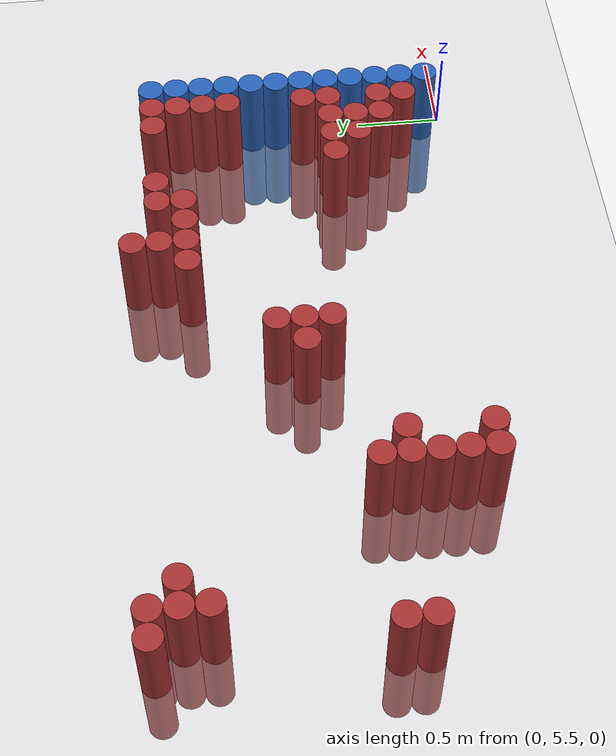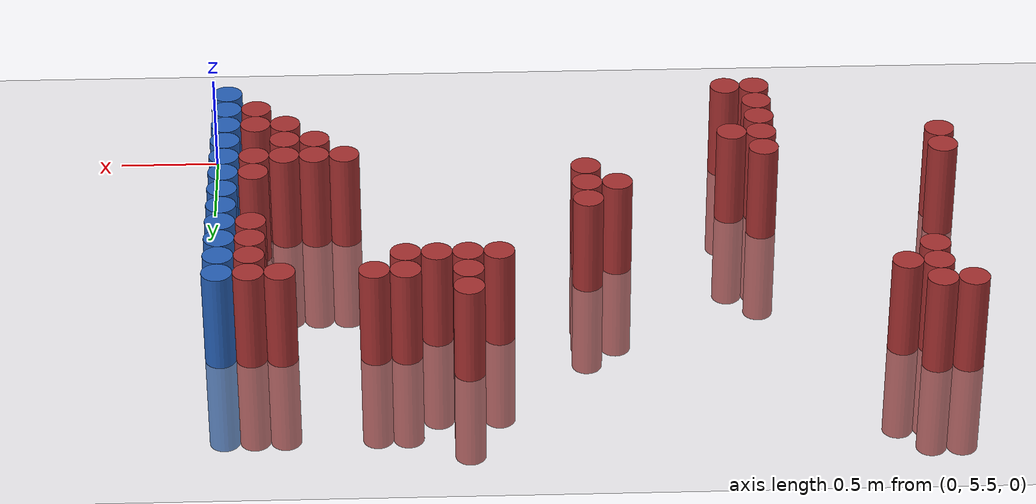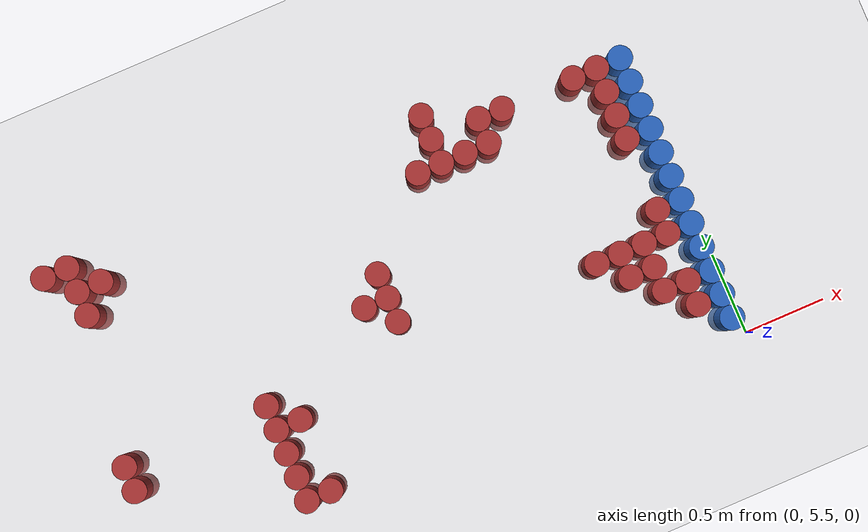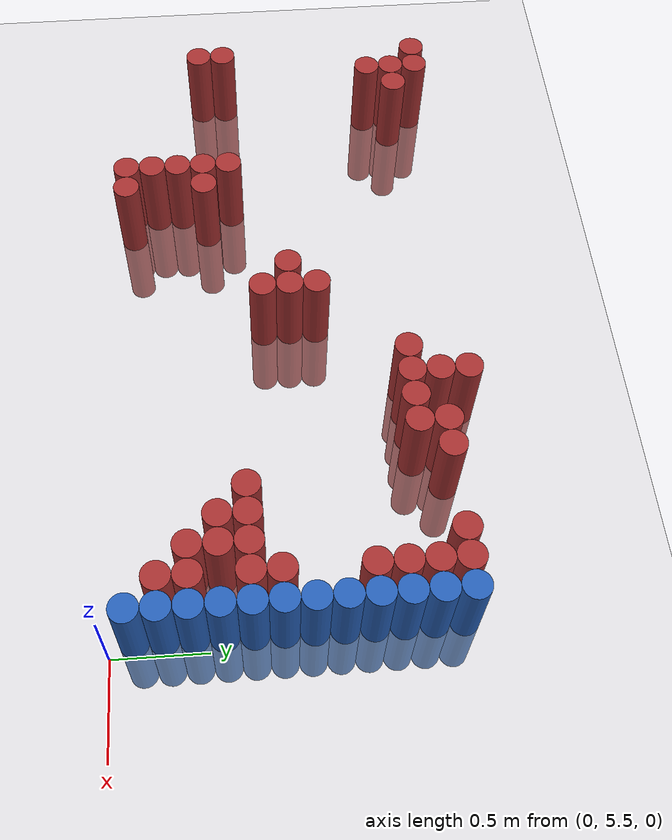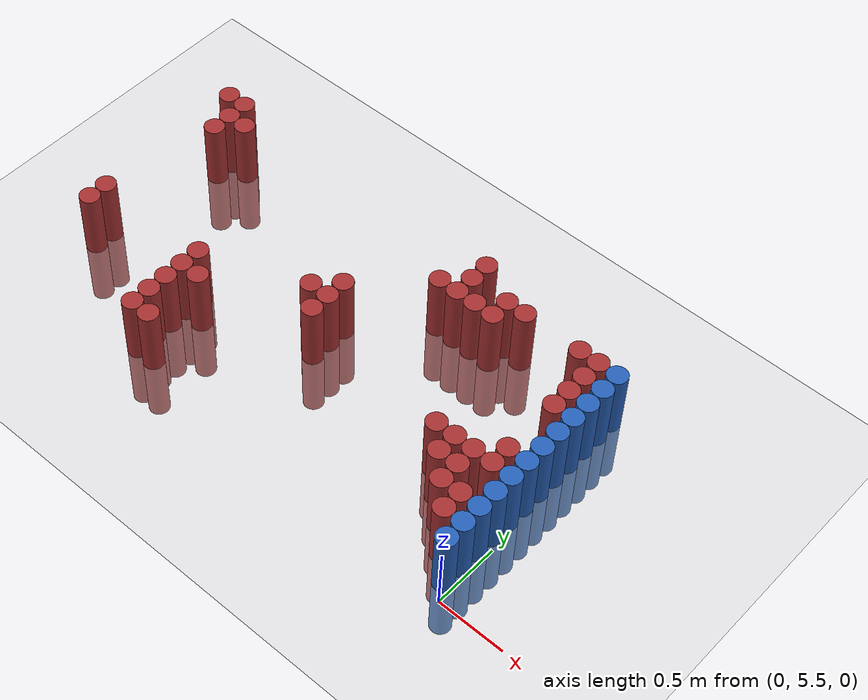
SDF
<sdf version="1.6">
 <world name="default">
  <model name="ground_plane">
   <static>1</static>
   <link name="link">
    <collision name="collision">
     <geometry><plane><normal>0 0 1</normal><size>100 100</size></plane></geometry>
     <surface><friction><ode><mu>100</mu><mu2>50</mu2></ode></friction></surface>
    </collision>
    <visual name="visual">
     <cast_shadows>0</cast_shadows>
     <geometry><plane><normal>0 0 1</normal><size>100 100</size></plane></geometry>
     <material>
      <script><uri>file://media/materials/scripts/gazebo.material</uri><name>Gazebo/Grey</name></script>
     </material>
    </visual>
   </link>
  </model>
  <model name="unit_cylinder_162">
   <static>1</static>
   <pose>-3.675000 6.075000 0.000000 0.000000 0.000000 0.000000</pose>
   <link name="link">
    <inertial>
     <mass>1</mass>
     <inertia><ixx>0.145833</ixx><ixy>0</ixy><ixz>0</ixz><iyy>0.145833</iyy><iyz>0</iyz><izz>0.125</izz></inertia>
    </inertial>
    <collision name="collision">
     <geometry><cylinder><radius>0.075000</radius><length>1</length></cylinder></geometry>
    </collision>
    <visual name="visual">
     <geometry><cylinder><radius>0.075000</radius><length>1</length></cylinder></geometry>
     <material>
      <ambient>0.648000 0.192000 0.192000 1</ambient>
      <diffuse>0.648000 0.192000 0.192000 1</diffuse>
     </material>
     <material>
      <script><name>Gazebo/Grey</name><uri>file://media/materials/scripts/gazebo.material</uri></script>
     </material>
    </visual>
   </link>
  </model>
  <model name="unit_cylinder_163">
   <static>1</static>
   <pose>-3.675000 6.225000 0.000000 0.000000 0.000000 0.000000</pose>
   <link name="link">
    <inertial>
     <mass>1</mass>
     <inertia><ixx>0.145833</ixx><ixy>0</ixy><ixz>0</ixz><iyy>0.145833</iyy><iyz>0</iyz><izz>0.125</izz></inertia>
    </inertial>
    <collision name="collision">
     <geometry><cylinder><radius>0.075000</radius><length>1</length></cylinder></geometry>
    </collision>
    <visual name="visual">
     <geometry><cylinder><radius>0.075000</radius><length>1</length></cylinder></geometry>
     <material>
      <ambient>0.648000 0.192000 0.192000 1</ambient>
      <diffuse>0.648000 0.192000 0.192000 1</diffuse>
     </material>
     <material>
      <script><name>Gazebo/Grey</name><uri>file://media/materials/scripts/gazebo.material</uri></script>
     </material>
    </visual>
   </link>
  </model>
  <model name="unit_cylinder_164">
   <static>1</static>
   <pose>-3.675000 7.425000 0.000000 0.000000 0.000000 0.000000</pose>
   <link name="link">
    <inertial>
     <mass>1</mass>
     <inertia><ixx>0.145833</ixx><ixy>0</ixy><ixz>0</ixz><iyy>0.145833</iyy><iyz>0</iyz><izz>0.125</izz></inertia>
    </inertial>
    <collision name="collision">
     <geometry><cylinder><radius>0.075000</radius><length>1</length></cylinder></geometry>
    </collision>
    <visual name="visual">
     <geometry><cylinder><radius>0.075000</radius><length>1</length></cylinder></geometry>
     <material>
      <ambient>0.648000 0.192000 0.192000 1</ambient>
      <diffuse>0.648000 0.192000 0.192000 1</diffuse>
     </material>
     <material>
      <script><name>Gazebo/Grey</name><uri>file://media/materials/scripts/gazebo.material</uri></script>
     </material>
    </visual>
   </link>
  </model>
  <model name="unit_cylinder_169">
   <static>1</static>
   <pose>-3.525000 7.125000 0.000000 0.000000 0.000000 0.000000</pose>
   <link name="link">
    <inertial>
     <mass>1</mass>
     <inertia><ixx>0.145833</ixx><ixy>0</ixy><ixz>0</ixz><iyy>0.145833</iyy><iyz>0</iyz><izz>0.125</izz></inertia>
    </inertial>
    <collision name="collision">
     <geometry><cylinder><radius>0.075000</radius><length>1</length></cylinder></geometry>
    </collision>
    <visual name="visual">
     <geometry><cylinder><radius>0.075000</radius><length>1</length></cylinder></geometry>
     <material>
      <ambient>0.648000 0.192000 0.192000 1</ambient>
      <diffuse>0.648000 0.192000 0.192000 1</diffuse>
     </material>
     <material>
      <script><name>Gazebo/Grey</name><uri>file://media/materials/scripts/gazebo.material</uri></script>
     </material>
    </visual>
   </link>
  </model>
  <model name="unit_cylinder_170">
   <static>1</static>
   <pose>-3.525000 7.275000 0.000000 0.000000 0.000000 0.000000</pose>
   <link name="link">
    <inertial>
     <mass>1</mass>
     <inertia><ixx>0.145833</ixx><ixy>0</ixy><ixz>0</ixz><iyy>0.145833</iyy><iyz>0</iyz><izz>0.125</izz></inertia>
    </inertial>
    <collision name="collision">
     <geometry><cylinder><radius>0.075000</radius><length>1</length></cylinder></geometry>
    </collision>
    <visual name="visual">
     <geometry><cylinder><radius>0.075000</radius><length>1</length></cylinder></geometry>
     <material>
      <ambient>0.648000 0.192000 0.192000 1</ambient>
      <diffuse>0.648000 0.192000 0.192000 1</diffuse>
     </material>
     <material>
      <script><name>Gazebo/Grey</name><uri>file://media/materials/scripts/gazebo.material</uri></script>
     </material>
    </visual>
   </link>
  </model>
  <model name="unit_cylinder_171">
   <static>1</static>
   <pose>-3.525000 7.425000 0.000000 0.000000 0.000000 0.000000</pose>
   <link name="link">
    <inertial>
     <mass>1</mass>
     <inertia><ixx>0.145833</ixx><ixy>0</ixy><ixz>0</ixz><iyy>0.145833</iyy><iyz>0</iyz><izz>0.125</izz></inertia>
    </inertial>
    <collision name="collision">
     <geometry><cylinder><radius>0.075000</radius><length>1</length></cylinder></geometry>
    </collision>
    <visual name="visual">
     <geometry><cylinder><radius>0.075000</radius><length>1</length></cylinder></geometry>
     <material>
      <ambient>0.648000 0.192000 0.192000 1</ambient>
      <diffuse>0.648000 0.192000 0.192000 1</diffuse>
     </material>
     <material>
      <script><name>Gazebo/Grey</name><uri>file://media/materials/scripts/gazebo.material</uri></script>
     </material>
    </visual>
   </link>
  </model>
  <model name="unit_cylinder_176">
   <static>1</static>
   <pose>-3.375000 7.275000 0.000000 0.000000 0.000000 0.000000</pose>
   <link name="link">
    <inertial>
     <mass>1</mass>
     <inertia><ixx>0.145833</ixx><ixy>0</ixy><ixz>0</ixz><iyy>0.145833</iyy><iyz>0</iyz><izz>0.125</izz></inertia>
    </inertial>
    <collision name="collision">
     <geometry><cylinder><radius>0.075000</radius><length>1</length></cylinder></geometry>
    </collision>
    <visual name="visual">
     <geometry><cylinder><radius>0.075000</radius><length>1</length></cylinder></geometry>
     <material>
      <ambient>0.648000 0.192000 0.192000 1</ambient>
      <diffuse>0.648000 0.192000 0.192000 1</diffuse>
     </material>
     <material>
      <script><name>Gazebo/Grey</name><uri>file://media/materials/scripts/gazebo.material</uri></script>
     </material>
    </visual>
   </link>
  </model>
  <model name="unit_cylinder_177">
   <static>1</static>
   <pose>-2.775000 5.625000 0.000000 0.000000 0.000000 0.000000</pose>
   <link name="link">
    <inertial>
     <mass>1</mass>
     <inertia><ixx>0.145833</ixx><ixy>0</ixy><ixz>0</ixz><iyy>0.145833</iyy><iyz>0</iyz><izz>0.125</izz></inertia>
    </inertial>
    <collision name="collision">
     <geometry><cylinder><radius>0.075000</radius><length>1</length></cylinder></geometry>
    </collision>
    <visual name="visual">
     <geometry><cylinder><radius>0.075000</radius><length>1</length></cylinder></geometry>
     <material>
      <ambient>0.648000 0.192000 0.192000 1</ambient>
      <diffuse>0.648000 0.192000 0.192000 1</diffuse>
     </material>
     <material>
      <script><name>Gazebo/Grey</name><uri>file://media/materials/scripts/gazebo.material</uri></script>
     </material>
    </visual>
   </link>
  </model>
  <model name="unit_cylinder_178">
   <static>1</static>
   <pose>-2.775000 5.775000 0.000000 0.000000 0.000000 0.000000</pose>
   <link name="link">
    <inertial>
     <mass>1</mass>
     <inertia><ixx>0.145833</ixx><ixy>0</ixy><ixz>0</ixz><iyy>0.145833</iyy><iyz>0</iyz><izz>0.125</izz></inertia>
    </inertial>
    <collision name="collision">
     <geometry><cylinder><radius>0.075000</radius><length>1</length></cylinder></geometry>
    </collision>
    <visual name="visual">
     <geometry><cylinder><radius>0.075000</radius><length>1</length></cylinder></geometry>
     <material>
      <ambient>0.648000 0.192000 0.192000 1</ambient>
      <diffuse>0.648000 0.192000 0.192000 1</diffuse>
     </material>
     <material>
      <script><name>Gazebo/Grey</name><uri>file://media/materials/scripts/gazebo.material</uri></script>
     </material>
    </visual>
   </link>
  </model>
  <model name="unit_cylinder_179">
   <static>1</static>
   <pose>-2.775000 5.925000 0.000000 0.000000 0.000000 0.000000</pose>
   <link name="link">
    <inertial>
     <mass>1</mass>
     <inertia><ixx>0.145833</ixx><ixy>0</ixy><ixz>0</ixz><iyy>0.145833</iyy><iyz>0</iyz><izz>0.125</izz></inertia>
    </inertial>
    <collision name="collision">
     <geometry><cylinder><radius>0.075000</radius><length>1</length></cylinder></geometry>
    </collision>
    <visual name="visual">
     <geometry><cylinder><radius>0.075000</radius><length>1</length></cylinder></geometry>
     <material>
      <ambient>0.648000 0.192000 0.192000 1</ambient>
      <diffuse>0.648000 0.192000 0.192000 1</diffuse>
     </material>
     <material>
      <script><name>Gazebo/Grey</name><uri>file://media/materials/scripts/gazebo.material</uri></script>
     </material>
    </visual>
   </link>
  </model>
  <model name="unit_cylinder_180">
   <static>1</static>
   <pose>-2.775000 6.075000 0.000000 0.000000 0.000000 0.000000</pose>
   <link name="link">
    <inertial>
     <mass>1</mass>
     <inertia><ixx>0.145833</ixx><ixy>0</ixy><ixz>0</ixz><iyy>0.145833</iyy><iyz>0</iyz><izz>0.125</izz></inertia>
    </inertial>
    <collision name="collision">
     <geometry><cylinder><radius>0.075000</radius><length>1</length></cylinder></geometry>
    </collision>
    <visual name="visual">
     <geometry><cylinder><radius>0.075000</radius><length>1</length></cylinder></geometry>
     <material>
      <ambient>0.648000 0.192000 0.192000 1</ambient>
      <diffuse>0.648000 0.192000 0.192000 1</diffuse>
     </material>
     <material>
      <script><name>Gazebo/Grey</name><uri>file://media/materials/scripts/gazebo.material</uri></script>
     </material>
    </visual>
   </link>
  </model>
  <model name="unit_cylinder_181">
   <static>1</static>
   <pose>-2.775000 6.225000 0.000000 0.000000 0.000000 0.000000</pose>
   <link name="link">
    <inertial>
     <mass>1</mass>
     <inertia><ixx>0.145833</ixx><ixy>0</ixy><ixz>0</ixz><iyy>0.145833</iyy><iyz>0</iyz><izz>0.125</izz></inertia>
    </inertial>
    <collision name="collision">
     <geometry><cylinder><radius>0.075000</radius><length>1</length></cylinder></geometry>
    </collision>
    <visual name="visual">
     <geometry><cylinder><radius>0.075000</radius><length>1</length></cylinder></geometry>
     <material>
      <ambient>0.648000 0.192000 0.192000 1</ambient>
      <diffuse>0.648000 0.192000 0.192000 1</diffuse>
     </material>
     <material>
      <script><name>Gazebo/Grey</name><uri>file://media/materials/scripts/gazebo.material</uri></script>
     </material>
    </visual>
   </link>
  </model>
  <model name="unit_cylinder_183">
   <static>1</static>
   <pose>-2.625000 5.625000 0.000000 0.000000 0.000000 0.000000</pose>
   <link name="link">
    <inertial>
     <mass>1</mass>
     <inertia><ixx>0.145833</ixx><ixy>0</ixy><ixz>0</ixz><iyy>0.145833</iyy><iyz>0</iyz><izz>0.125</izz></inertia>
    </inertial>
    <collision name="collision">
     <geometry><cylinder><radius>0.075000</radius><length>1</length></cylinder></geometry>
    </collision>
    <visual name="visual">
     <geometry><cylinder><radius>0.075000</radius><length>1</length></cylinder></geometry>
     <material>
      <ambient>0.648000 0.192000 0.192000 1</ambient>
      <diffuse>0.648000 0.192000 0.192000 1</diffuse>
     </material>
     <material>
      <script><name>Gazebo/Grey</name><uri>file://media/materials/scripts/gazebo.material</uri></script>
     </material>
    </visual>
   </link>
  </model>
  <model name="unit_cylinder_184">
   <static>1</static>
   <pose>-2.625000 6.075000 0.000000 0.000000 0.000000 0.000000</pose>
   <link name="link">
    <inertial>
     <mass>1</mass>
     <inertia><ixx>0.145833</ixx><ixy>0</ixy><ixz>0</ixz><iyy>0.145833</iyy><iyz>0</iyz><izz>0.125</izz></inertia>
    </inertial>
    <collision name="collision">
     <geometry><cylinder><radius>0.075000</radius><length>1</length></cylinder></geometry>
    </collision>
    <visual name="visual">
     <geometry><cylinder><radius>0.075000</radius><length>1</length></cylinder></geometry>
     <material>
      <ambient>0.648000 0.192000 0.192000 1</ambient>
      <diffuse>0.648000 0.192000 0.192000 1</diffuse>
     </material>
     <material>
      <script><name>Gazebo/Grey</name><uri>file://media/materials/scripts/gazebo.material</uri></script>
     </material>
    </visual>
   </link>
  </model>
  <model name="unit_cylinder_187">
   <static>1</static>
   <pose>-2.025000 6.525000 0.000000 0.000000 0.000000 0.000000</pose>
   <link name="link">
    <inertial>
     <mass>1</mass>
     <inertia><ixx>0.145833</ixx><ixy>0</ixy><ixz>0</ixz><iyy>0.145833</iyy><iyz>0</iyz><izz>0.125</izz></inertia>
    </inertial>
    <collision name="collision">
     <geometry><cylinder><radius>0.075000</radius><length>1</length></cylinder></geometry>
    </collision>
    <visual name="visual">
     <geometry><cylinder><radius>0.075000</radius><length>1</length></cylinder></geometry>
     <material>
      <ambient>0.648000 0.192000 0.192000 1</ambient>
      <diffuse>0.648000 0.192000 0.192000 1</diffuse>
     </material>
     <material>
      <script><name>Gazebo/Grey</name><uri>file://media/materials/scripts/gazebo.material</uri></script>
     </material>
    </visual>
   </link>
  </model>
  <model name="unit_cylinder_189">
   <static>1</static>
   <pose>-1.875000 6.375000 0.000000 0.000000 0.000000 0.000000</pose>
   <link name="link">
    <inertial>
     <mass>1</mass>
     <inertia><ixx>0.145833</ixx><ixy>0</ixy><ixz>0</ixz><iyy>0.145833</iyy><iyz>0</iyz><izz>0.125</izz></inertia>
    </inertial>
    <collision name="collision">
     <geometry><cylinder><radius>0.075000</radius><length>1</length></cylinder></geometry>
    </collision>
    <visual name="visual">
     <geometry><cylinder><radius>0.075000</radius><length>1</length></cylinder></geometry>
     <material>
      <ambient>0.648000 0.192000 0.192000 1</ambient>
      <diffuse>0.648000 0.192000 0.192000 1</diffuse>
     </material>
     <material>
      <script><name>Gazebo/Grey</name><uri>file://media/materials/scripts/gazebo.material</uri></script>
     </material>
    </visual>
   </link>
  </model>
  <model name="unit_cylinder_190">
   <static>1</static>
   <pose>-1.875000 6.525000 0.000000 0.000000 0.000000 0.000000</pose>
   <link name="link">
    <inertial>
     <mass>1</mass>
     <inertia><ixx>0.145833</ixx><ixy>0</ixy><ixz>0</ixz><iyy>0.145833</iyy><iyz>0</iyz><izz>0.125</izz></inertia>
    </inertial>
    <collision name="collision">
     <geometry><cylinder><radius>0.075000</radius><length>1</length></cylinder></geometry>
    </collision>
    <visual name="visual">
     <geometry><cylinder><radius>0.075000</radius><length>1</length></cylinder></geometry>
     <material>
      <ambient>0.648000 0.192000 0.192000 1</ambient>
      <diffuse>0.648000 0.192000 0.192000 1</diffuse>
     </material>
     <material>
      <script><name>Gazebo/Grey</name><uri>file://media/materials/scripts/gazebo.material</uri></script>
     </material>
    </visual>
   </link>
  </model>
  <model name="unit_cylinder_191">
   <static>1</static>
   <pose>-1.875000 6.675000 0.000000 0.000000 0.000000 0.000000</pose>
   <link name="link">
    <inertial>
     <mass>1</mass>
     <inertia><ixx>0.145833</ixx><ixy>0</ixy><ixz>0</ixz><iyy>0.145833</iyy><iyz>0</iyz><izz>0.125</izz></inertia>
    </inertial>
    <collision name="collision">
     <geometry><cylinder><radius>0.075000</radius><length>1</length></cylinder></geometry>
    </collision>
    <visual name="visual">
     <geometry><cylinder><radius>0.075000</radius><length>1</length></cylinder></geometry>
     <material>
      <ambient>0.648000 0.192000 0.192000 1</ambient>
      <diffuse>0.648000 0.192000 0.192000 1</diffuse>
     </material>
     <material>
      <script><name>Gazebo/Grey</name><uri>file://media/materials/scripts/gazebo.material</uri></script>
     </material>
    </visual>
   </link>
  </model>
  <model name="unit_cylinder_199">
   <static>1</static>
   <pose>-1.425000 7.125000 0.000000 0.000000 0.000000 0.000000</pose>
   <link name="link">
    <inertial>
     <mass>1</mass>
     <inertia><ixx>0.145833</ixx><ixy>0</ixy><ixz>0</ixz><iyy>0.145833</iyy><iyz>0</iyz><izz>0.125</izz></inertia>
    </inertial>
    <collision name="collision">
     <geometry><cylinder><radius>0.075000</radius><length>1</length></cylinder></geometry>
    </collision>
    <visual name="visual">
     <geometry><cylinder><radius>0.075000</radius><length>1</length></cylinder></geometry>
     <material>
      <ambient>0.648000 0.192000 0.192000 1</ambient>
      <diffuse>0.648000 0.192000 0.192000 1</diffuse>
     </material>
     <material>
      <script><name>Gazebo/Grey</name><uri>file://media/materials/scripts/gazebo.material</uri></script>
     </material>
    </visual>
   </link>
  </model>
  <model name="unit_cylinder_205">
   <static>1</static>
   <pose>-1.275000 7.125000 0.000000 0.000000 0.000000 0.000000</pose>
   <link name="link">
    <inertial>
     <mass>1</mass>
     <inertia><ixx>0.145833</ixx><ixy>0</ixy><ixz>0</ixz><iyy>0.145833</iyy><iyz>0</iyz><izz>0.125</izz></inertia>
    </inertial>
    <collision name="collision">
     <geometry><cylinder><radius>0.075000</radius><length>1</length></cylinder></geometry>
    </collision>
    <visual name="visual">
     <geometry><cylinder><radius>0.075000</radius><length>1</length></cylinder></geometry>
     <material>
      <ambient>0.648000 0.192000 0.192000 1</ambient>
      <diffuse>0.648000 0.192000 0.192000 1</diffuse>
     </material>
     <material>
      <script><name>Gazebo/Grey</name><uri>file://media/materials/scripts/gazebo.material</uri></script>
     </material>
    </visual>
   </link>
  </model>
  <model name="unit_cylinder_206">
   <static>1</static>
   <pose>-1.275000 7.275000 0.000000 0.000000 0.000000 0.000000</pose>
   <link name="link">
    <inertial>
     <mass>1</mass>
     <inertia><ixx>0.145833</ixx><ixy>0</ixy><ixz>0</ixz><iyy>0.145833</iyy><iyz>0</iyz><izz>0.125</izz></inertia>
    </inertial>
    <collision name="collision">
     <geometry><cylinder><radius>0.075000</radius><length>1</length></cylinder></geometry>
    </collision>
    <visual name="visual">
     <geometry><cylinder><radius>0.075000</radius><length>1</length></cylinder></geometry>
     <material>
      <ambient>0.648000 0.192000 0.192000 1</ambient>
      <diffuse>0.648000 0.192000 0.192000 1</diffuse>
     </material>
     <material>
      <script><name>Gazebo/Grey</name><uri>file://media/materials/scripts/gazebo.material</uri></script>
     </material>
    </visual>
   </link>
  </model>
  <model name="unit_cylinder_207">
   <static>1</static>
   <pose>-1.275000 7.425000 0.000000 0.000000 0.000000 0.000000</pose>
   <link name="link">
    <inertial>
     <mass>1</mass>
     <inertia><ixx>0.145833</ixx><ixy>0</ixy><ixz>0</ixz><iyy>0.145833</iyy><iyz>0</iyz><izz>0.125</izz></inertia>
    </inertial>
    <collision name="collision">
     <geometry><cylinder><radius>0.075000</radius><length>1</length></cylinder></geometry>
    </collision>
    <visual name="visual">
     <geometry><cylinder><radius>0.075000</radius><length>1</length></cylinder></geometry>
     <material>
      <ambient>0.648000 0.192000 0.192000 1</ambient>
      <diffuse>0.648000 0.192000 0.192000 1</diffuse>
     </material>
     <material>
      <script><name>Gazebo/Grey</name><uri>file://media/materials/scripts/gazebo.material</uri></script>
     </material>
    </visual>
   </link>
  </model>
  <model name="unit_cylinder_210">
   <static>1</static>
   <pose>-1.125000 7.125000 0.000000 0.000000 0.000000 0.000000</pose>
   <link name="link">
    <inertial>
     <mass>1</mass>
     <inertia><ixx>0.145833</ixx><ixy>0</ixy><ixz>0</ixz><iyy>0.145833</iyy><iyz>0</iyz><izz>0.125</izz></inertia>
    </inertial>
    <collision name="collision">
     <geometry><cylinder><radius>0.075000</radius><length>1</length></cylinder></geometry>
    </collision>
    <visual name="visual">
     <geometry><cylinder><radius>0.075000</radius><length>1</length></cylinder></geometry>
     <material>
      <ambient>0.648000 0.192000 0.192000 1</ambient>
      <diffuse>0.648000 0.192000 0.192000 1</diffuse>
     </material>
     <material>
      <script><name>Gazebo/Grey</name><uri>file://media/materials/scripts/gazebo.material</uri></script>
     </material>
    </visual>
   </link>
  </model>
  <model name="unit_cylinder_213">
   <static>1</static>
   <pose>-0.975000 7.125000 0.000000 0.000000 0.000000 0.000000</pose>
   <link name="link">
    <inertial>
     <mass>1</mass>
     <inertia><ixx>0.145833</ixx><ixy>0</ixy><ixz>0</ixz><iyy>0.145833</iyy><iyz>0</iyz><izz>0.125</izz></inertia>
    </inertial>
    <collision name="collision">
     <geometry><cylinder><radius>0.075000</radius><length>1</length></cylinder></geometry>
    </collision>
    <visual name="visual">
     <geometry><cylinder><radius>0.075000</radius><length>1</length></cylinder></geometry>
     <material>
      <ambient>0.648000 0.192000 0.192000 1</ambient>
      <diffuse>0.648000 0.192000 0.192000 1</diffuse>
     </material>
     <material>
      <script><name>Gazebo/Grey</name><uri>file://media/materials/scripts/gazebo.material</uri></script>
     </material>
    </visual>
   </link>
  </model>
  <model name="unit_cylinder_214">
   <static>1</static>
   <pose>-0.975000 7.275000 0.000000 0.000000 0.000000 0.000000</pose>
   <link name="link">
    <inertial>
     <mass>1</mass>
     <inertia><ixx>0.145833</ixx><ixy>0</ixy><ixz>0</ixz><iyy>0.145833</iyy><iyz>0</iyz><izz>0.125</izz></inertia>
    </inertial>
    <collision name="collision">
     <geometry><cylinder><radius>0.075000</radius><length>1</length></cylinder></geometry>
    </collision>
    <visual name="visual">
     <geometry><cylinder><radius>0.075000</radius><length>1</length></cylinder></geometry>
     <material>
      <ambient>0.648000 0.192000 0.192000 1</ambient>
      <diffuse>0.648000 0.192000 0.192000 1</diffuse>
     </material>
     <material>
      <script><name>Gazebo/Grey</name><uri>file://media/materials/scripts/gazebo.material</uri></script>
     </material>
    </visual>
   </link>
  </model>
  <model name="unit_cylinder_218">
   <static>1</static>
   <pose>-0.825000 7.275000 0.000000 0.000000 0.000000 0.000000</pose>
   <link name="link">
    <inertial>
     <mass>1</mass>
     <inertia><ixx>0.145833</ixx><ixy>0</ixy><ixz>0</ixz><iyy>0.145833</iyy><iyz>0</iyz><izz>0.125</izz></inertia>
    </inertial>
    <collision name="collision">
     <geometry><cylinder><radius>0.075000</radius><length>1</length></cylinder></geometry>
    </collision>
    <visual name="visual">
     <geometry><cylinder><radius>0.075000</radius><length>1</length></cylinder></geometry>
     <material>
      <ambient>0.648000 0.192000 0.192000 1</ambient>
      <diffuse>0.648000 0.192000 0.192000 1</diffuse>
     </material>
     <material>
      <script><name>Gazebo/Grey</name><uri>file://media/materials/scripts/gazebo.material</uri></script>
     </material>
    </visual>
   </link>
  </model>
  <model name="unit_cylinder_219">
   <static>1</static>
   <pose>-0.675000 6.225000 0.000000 0.000000 0.000000 0.000000</pose>
   <link name="link">
    <inertial>
     <mass>1</mass>
     <inertia><ixx>0.145833</ixx><ixy>0</ixy><ixz>0</ixz><iyy>0.145833</iyy><iyz>0</iyz><izz>0.125</izz></inertia>
    </inertial>
    <collision name="collision">
     <geometry><cylinder><radius>0.075000</radius><length>1</length></cylinder></geometry>
    </collision>
    <visual name="visual">
     <geometry><cylinder><radius>0.075000</radius><length>1</length></cylinder></geometry>
     <material>
      <ambient>0.648000 0.192000 0.192000 1</ambient>
      <diffuse>0.648000 0.192000 0.192000 1</diffuse>
     </material>
     <material>
      <script><name>Gazebo/Grey</name><uri>file://media/materials/scripts/gazebo.material</uri></script>
     </material>
    </visual>
   </link>
  </model>
  <model name="unit_cylinder_220">
   <static>1</static>
   <pose>-0.525000 6.075000 0.000000 0.000000 0.000000 0.000000</pose>
   <link name="link">
    <inertial>
     <mass>1</mass>
     <inertia><ixx>0.145833</ixx><ixy>0</ixy><ixz>0</ixz><iyy>0.145833</iyy><iyz>0</iyz><izz>0.125</izz></inertia>
    </inertial>
    <collision name="collision">
     <geometry><cylinder><radius>0.075000</radius><length>1</length></cylinder></geometry>
    </collision>
    <visual name="visual">
     <geometry><cylinder><radius>0.075000</radius><length>1</length></cylinder></geometry>
     <material>
      <ambient>0.648000 0.192000 0.192000 1</ambient>
      <diffuse>0.648000 0.192000 0.192000 1</diffuse>
     </material>
     <material>
      <script><name>Gazebo/Grey</name><uri>file://media/materials/scripts/gazebo.material</uri></script>
     </material>
    </visual>
   </link>
  </model>
  <model name="unit_cylinder_221">
   <static>1</static>
   <pose>-0.525000 6.225000 0.000000 0.000000 0.000000 0.000000</pose>
   <link name="link">
    <inertial>
     <mass>1</mass>
     <inertia><ixx>0.145833</ixx><ixy>0</ixy><ixz>0</ixz><iyy>0.145833</iyy><iyz>0</iyz><izz>0.125</izz></inertia>
    </inertial>
    <collision name="collision">
     <geometry><cylinder><radius>0.075000</radius><length>1</length></cylinder></geometry>
    </collision>
    <visual name="visual">
     <geometry><cylinder><radius>0.075000</radius><length>1</length></cylinder></geometry>
     <material>
      <ambient>0.648000 0.192000 0.192000 1</ambient>
      <diffuse>0.648000 0.192000 0.192000 1</diffuse>
     </material>
     <material>
      <script><name>Gazebo/Grey</name><uri>file://media/materials/scripts/gazebo.material</uri></script>
     </material>
    </visual>
   </link>
  </model>
  <model name="unit_cylinder_222">
   <static>1</static>
   <pose>-0.375000 5.925000 0.000000 0.000000 0.000000 0.000000</pose>
   <link name="link">
    <inertial>
     <mass>1</mass>
     <inertia><ixx>0.145833</ixx><ixy>0</ixy><ixz>0</ixz><iyy>0.145833</iyy><iyz>0</iyz><izz>0.125</izz></inertia>
    </inertial>
    <collision name="collision">
     <geometry><cylinder><radius>0.075000</radius><length>1</length></cylinder></geometry>
    </collision>
    <visual name="visual">
     <geometry><cylinder><radius>0.075000</radius><length>1</length></cylinder></geometry>
     <material>
      <ambient>0.648000 0.192000 0.192000 1</ambient>
      <diffuse>0.648000 0.192000 0.192000 1</diffuse>
     </material>
     <material>
      <script><name>Gazebo/Grey</name><uri>file://media/materials/scripts/gazebo.material</uri></script>
     </material>
    </visual>
   </link>
  </model>
  <model name="unit_cylinder_223">
   <static>1</static>
   <pose>-0.375000 6.075000 0.000000 0.000000 0.000000 0.000000</pose>
   <link name="link">
    <inertial>
     <mass>1</mass>
     <inertia><ixx>0.145833</ixx><ixy>0</ixy><ixz>0</ixz><iyy>0.145833</iyy><iyz>0</iyz><izz>0.125</izz></inertia>
    </inertial>
    <collision name="collision">
     <geometry><cylinder><radius>0.075000</radius><length>1</length></cylinder></geometry>
    </collision>
    <visual name="visual">
     <geometry><cylinder><radius>0.075000</radius><length>1</length></cylinder></geometry>
     <material>
      <ambient>0.648000 0.192000 0.192000 1</ambient>
      <diffuse>0.648000 0.192000 0.192000 1</diffuse>
     </material>
     <material>
      <script><name>Gazebo/Grey</name><uri>file://media/materials/scripts/gazebo.material</uri></script>
     </material>
    </visual>
   </link>
  </model>
  <model name="unit_cylinder_224">
   <static>1</static>
   <pose>-0.375000 6.225000 0.000000 0.000000 0.000000 0.000000</pose>
   <link name="link">
    <inertial>
     <mass>1</mass>
     <inertia><ixx>0.145833</ixx><ixy>0</ixy><ixz>0</ixz><iyy>0.145833</iyy><iyz>0</iyz><izz>0.125</izz></inertia>
    </inertial>
    <collision name="collision">
     <geometry><cylinder><radius>0.075000</radius><length>1</length></cylinder></geometry>
    </collision>
    <visual name="visual">
     <geometry><cylinder><radius>0.075000</radius><length>1</length></cylinder></geometry>
     <material>
      <ambient>0.648000 0.192000 0.192000 1</ambient>
      <diffuse>0.648000 0.192000 0.192000 1</diffuse>
     </material>
     <material>
      <script><name>Gazebo/Grey</name><uri>file://media/materials/scripts/gazebo.material</uri></script>
     </material>
    </visual>
   </link>
  </model>
  <model name="unit_cylinder_225">
   <static>1</static>
   <pose>-0.375000 7.275000 0.000000 0.000000 0.000000 0.000000</pose>
   <link name="link">
    <inertial>
     <mass>1</mass>
     <inertia><ixx>0.145833</ixx><ixy>0</ixy><ixz>0</ixz><iyy>0.145833</iyy><iyz>0</iyz><izz>0.125</izz></inertia>
    </inertial>
    <collision name="collision">
     <geometry><cylinder><radius>0.075000</radius><length>1</length></cylinder></geometry>
    </collision>
    <visual name="visual">
     <geometry><cylinder><radius>0.075000</radius><length>1</length></cylinder></geometry>
     <material>
      <ambient>0.648000 0.192000 0.192000 1</ambient>
      <diffuse>0.648000 0.192000 0.192000 1</diffuse>
     </material>
     <material>
      <script><name>Gazebo/Grey</name><uri>file://media/materials/scripts/gazebo.material</uri></script>
     </material>
    </visual>
   </link>
  </model>
  <model name="unit_cylinder_227">
   <static>1</static>
   <pose>-0.225000 5.775000 0.000000 0.000000 0.000000 0.000000</pose>
   <link name="link">
    <inertial>
     <mass>1</mass>
     <inertia><ixx>0.145833</ixx><ixy>0</ixy><ixz>0</ixz><iyy>0.145833</iyy><iyz>0</iyz><izz>0.125</izz></inertia>
    </inertial>
    <collision name="collision">
     <geometry><cylinder><radius>0.075000</radius><length>1</length></cylinder></geometry>
    </collision>
    <visual name="visual">
     <geometry><cylinder><radius>0.075000</radius><length>1</length></cylinder></geometry>
     <material>
      <ambient>0.648000 0.192000 0.192000 1</ambient>
      <diffuse>0.648000 0.192000 0.192000 1</diffuse>
     </material>
     <material>
      <script><name>Gazebo/Grey</name><uri>file://media/materials/scripts/gazebo.material</uri></script>
     </material>
    </visual>
   </link>
  </model>
  <model name="unit_cylinder_228">
   <static>1</static>
   <pose>-0.225000 5.925000 0.000000 0.000000 0.000000 0.000000</pose>
   <link name="link">
    <inertial>
     <mass>1</mass>
     <inertia><ixx>0.145833</ixx><ixy>0</ixy><ixz>0</ixz><iyy>0.145833</iyy><iyz>0</iyz><izz>0.125</izz></inertia>
    </inertial>
    <collision name="collision">
     <geometry><cylinder><radius>0.075000</radius><length>1</length></cylinder></geometry>
    </collision>
    <visual name="visual">
     <geometry><cylinder><radius>0.075000</radius><length>1</length></cylinder></geometry>
     <material>
      <ambient>0.648000 0.192000 0.192000 1</ambient>
      <diffuse>0.648000 0.192000 0.192000 1</diffuse>
     </material>
     <material>
      <script><name>Gazebo/Grey</name><uri>file://media/materials/scripts/gazebo.material</uri></script>
     </material>
    </visual>
   </link>
  </model>
  <model name="unit_cylinder_229">
   <static>1</static>
   <pose>-0.225000 6.225000 0.000000 0.000000 0.000000 0.000000</pose>
   <link name="link">
    <inertial>
     <mass>1</mass>
     <inertia><ixx>0.145833</ixx><ixy>0</ixy><ixz>0</ixz><iyy>0.145833</iyy><iyz>0</iyz><izz>0.125</izz></inertia>
    </inertial>
    <collision name="collision">
     <geometry><cylinder><radius>0.075000</radius><length>1</length></cylinder></geometry>
    </collision>
    <visual name="visual">
     <geometry><cylinder><radius>0.075000</radius><length>1</length></cylinder></geometry>
     <material>
      <ambient>0.648000 0.192000 0.192000 1</ambient>
      <diffuse>0.648000 0.192000 0.192000 1</diffuse>
     </material>
     <material>
      <script><name>Gazebo/Grey</name><uri>file://media/materials/scripts/gazebo.material</uri></script>
     </material>
    </visual>
   </link>
  </model>
  <model name="unit_cylinder_230">
   <static>1</static>
   <pose>-0.225000 6.375000 0.000000 0.000000 0.000000 0.000000</pose>
   <link name="link">
    <inertial>
     <mass>1</mass>
     <inertia><ixx>0.145833</ixx><ixy>0</ixy><ixz>0</ixz><iyy>0.145833</iyy><iyz>0</iyz><izz>0.125</izz></inertia>
    </inertial>
    <collision name="collision">
     <geometry><cylinder><radius>0.075000</radius><length>1</length></cylinder></geometry>
    </collision>
    <visual name="visual">
     <geometry><cylinder><radius>0.075000</radius><length>1</length></cylinder></geometry>
     <material>
      <ambient>0.648000 0.192000 0.192000 1</ambient>
      <diffuse>0.648000 0.192000 0.192000 1</diffuse>
     </material>
     <material>
      <script><name>Gazebo/Grey</name><uri>file://media/materials/scripts/gazebo.material</uri></script>
     </material>
    </visual>
   </link>
  </model>
  <model name="unit_cylinder_231">
   <static>1</static>
   <pose>-0.225000 6.825000 0.000000 0.000000 0.000000 0.000000</pose>
   <link name="link">
    <inertial>
     <mass>1</mass>
     <inertia><ixx>0.145833</ixx><ixy>0</ixy><ixz>0</ixz><iyy>0.145833</iyy><iyz>0</iyz><izz>0.125</izz></inertia>
    </inertial>
    <collision name="collision">
     <geometry><cylinder><radius>0.075000</radius><length>1</length></cylinder></geometry>
    </collision>
    <visual name="visual">
     <geometry><cylinder><radius>0.075000</radius><length>1</length></cylinder></geometry>
     <material>
      <ambient>0.648000 0.192000 0.192000 1</ambient>
      <diffuse>0.648000 0.192000 0.192000 1</diffuse>
     </material>
     <material>
      <script><name>Gazebo/Grey</name><uri>file://media/materials/scripts/gazebo.material</uri></script>
     </material>
    </visual>
   </link>
  </model>
  <model name="unit_cylinder_232">
   <static>1</static>
   <pose>-0.225000 6.975000 0.000000 0.000000 0.000000 0.000000</pose>
   <link name="link">
    <inertial>
     <mass>1</mass>
     <inertia><ixx>0.145833</ixx><ixy>0</ixy><ixz>0</ixz><iyy>0.145833</iyy><iyz>0</iyz><izz>0.125</izz></inertia>
    </inertial>
    <collision name="collision">
     <geometry><cylinder><radius>0.075000</radius><length>1</length></cylinder></geometry>
    </collision>
    <visual name="visual">
     <geometry><cylinder><radius>0.075000</radius><length>1</length></cylinder></geometry>
     <material>
      <ambient>0.648000 0.192000 0.192000 1</ambient>
      <diffuse>0.648000 0.192000 0.192000 1</diffuse>
     </material>
     <material>
      <script><name>Gazebo/Grey</name><uri>file://media/materials/scripts/gazebo.material</uri></script>
     </material>
    </visual>
   </link>
  </model>
  <model name="unit_cylinder_233">
   <static>1</static>
   <pose>-0.225000 7.125000 0.000000 0.000000 0.000000 0.000000</pose>
   <link name="link">
    <inertial>
     <mass>1</mass>
     <inertia><ixx>0.145833</ixx><ixy>0</ixy><ixz>0</ixz><iyy>0.145833</iyy><iyz>0</iyz><izz>0.125</izz></inertia>
    </inertial>
    <collision name="collision">
     <geometry><cylinder><radius>0.075000</radius><length>1</length></cylinder></geometry>
    </collision>
    <visual name="visual">
     <geometry><cylinder><radius>0.075000</radius><length>1</length></cylinder></geometry>
     <material>
      <ambient>0.648000 0.192000 0.192000 1</ambient>
      <diffuse>0.648000 0.192000 0.192000 1</diffuse>
     </material>
     <material>
      <script><name>Gazebo/Grey</name><uri>file://media/materials/scripts/gazebo.material</uri></script>
     </material>
    </visual>
   </link>
  </model>
  <model name="unit_cylinder_234">
   <static>1</static>
   <pose>-0.225000 7.275000 0.000000 0.000000 0.000000 0.000000</pose>
   <link name="link">
    <inertial>
     <mass>1</mass>
     <inertia><ixx>0.145833</ixx><ixy>0</ixy><ixz>0</ixz><iyy>0.145833</iyy><iyz>0</iyz><izz>0.125</izz></inertia>
    </inertial>
    <collision name="collision">
     <geometry><cylinder><radius>0.075000</radius><length>1</length></cylinder></geometry>
    </collision>
    <visual name="visual">
     <geometry><cylinder><radius>0.075000</radius><length>1</length></cylinder></geometry>
     <material>
      <ambient>0.648000 0.192000 0.192000 1</ambient>
      <diffuse>0.648000 0.192000 0.192000 1</diffuse>
     </material>
     <material>
      <script><name>Gazebo/Grey</name><uri>file://media/materials/scripts/gazebo.material</uri></script>
     </material>
    </visual>
   </link>
  </model>
  <model name="unit_cylinder_242">
   <static>1</static>
   <pose>-0.075000 5.625000 0.000000 0.000000 0.000000 0.000000</pose>
   <link name="link">
    <inertial>
     <mass>1</mass>
     <inertia><ixx>0.145833</ixx><ixy>0</ixy><ixz>0</ixz><iyy>0.145833</iyy><iyz>0</iyz><izz>0.125</izz></inertia>
    </inertial>
    <collision name="collision">
     <geometry><cylinder><radius>0.075000</radius><length>1</length></cylinder></geometry>
    </collision>
    <visual name="visual">
     <geometry><cylinder><radius>0.075000</radius><length>1</length></cylinder></geometry>
     <material>
      <ambient>0.152000 0.379000 0.720000 1</ambient>
      <diffuse>0.152000 0.379000 0.720000 1</diffuse>
     </material>
     <material>
      <script><name>Gazebo/Grey</name><uri>file://media/materials/scripts/gazebo.material</uri></script>
     </material>
    </visual>
   </link>
  </model>
  <model name="unit_cylinder_243">
   <static>1</static>
   <pose>-0.075000 5.775000 0.000000 0.000000 0.000000 0.000000</pose>
   <link name="link">
    <inertial>
     <mass>1</mass>
     <inertia><ixx>0.145833</ixx><ixy>0</ixy><ixz>0</ixz><iyy>0.145833</iyy><iyz>0</iyz><izz>0.125</izz></inertia>
    </inertial>
    <collision name="collision">
     <geometry><cylinder><radius>0.075000</radius><length>1</length></cylinder></geometry>
    </collision>
    <visual name="visual">
     <geometry><cylinder><radius>0.075000</radius><length>1</length></cylinder></geometry>
     <material>
      <ambient>0.152000 0.379000 0.720000 1</ambient>
      <diffuse>0.152000 0.379000 0.720000 1</diffuse>
     </material>
     <material>
      <script><name>Gazebo/Grey</name><uri>file://media/materials/scripts/gazebo.material</uri></script>
     </material>
    </visual>
   </link>
  </model>
  <model name="unit_cylinder_244">
   <static>1</static>
   <pose>-0.075000 5.925000 0.000000 0.000000 0.000000 0.000000</pose>
   <link name="link">
    <inertial>
     <mass>1</mass>
     <inertia><ixx>0.145833</ixx><ixy>0</ixy><ixz>0</ixz><iyy>0.145833</iyy><iyz>0</iyz><izz>0.125</izz></inertia>
    </inertial>
    <collision name="collision">
     <geometry><cylinder><radius>0.075000</radius><length>1</length></cylinder></geometry>
    </collision>
    <visual name="visual">
     <geometry><cylinder><radius>0.075000</radius><length>1</length></cylinder></geometry>
     <material>
      <ambient>0.152000 0.379000 0.720000 1</ambient>
      <diffuse>0.152000 0.379000 0.720000 1</diffuse>
     </material>
     <material>
      <script><name>Gazebo/Grey</name><uri>file://media/materials/scripts/gazebo.material</uri></script>
     </material>
    </visual>
   </link>
  </model>
  <model name="unit_cylinder_245">
   <static>1</static>
   <pose>-0.075000 6.075000 0.000000 0.000000 0.000000 0.000000</pose>
   <link name="link">
    <inertial>
     <mass>1</mass>
     <inertia><ixx>0.145833</ixx><ixy>0</ixy><ixz>0</ixz><iyy>0.145833</iyy><iyz>0</iyz><izz>0.125</izz></inertia>
    </inertial>
    <collision name="collision">
     <geometry><cylinder><radius>0.075000</radius><length>1</length></cylinder></geometry>
    </collision>
    <visual name="visual">
     <geometry><cylinder><radius>0.075000</radius><length>1</length></cylinder></geometry>
     <material>
      <ambient>0.152000 0.379000 0.720000 1</ambient>
      <diffuse>0.152000 0.379000 0.720000 1</diffuse>
     </material>
     <material>
      <script><name>Gazebo/Grey</name><uri>file://media/materials/scripts/gazebo.material</uri></script>
     </material>
    </visual>
   </link>
  </model>
  <model name="unit_cylinder_246">
   <static>1</static>
   <pose>-0.075000 6.225000 0.000000 0.000000 0.000000 0.000000</pose>
   <link name="link">
    <inertial>
     <mass>1</mass>
     <inertia><ixx>0.145833</ixx><ixy>0</ixy><ixz>0</ixz><iyy>0.145833</iyy><iyz>0</iyz><izz>0.125</izz></inertia>
    </inertial>
    <collision name="collision">
     <geometry><cylinder><radius>0.075000</radius><length>1</length></cylinder></geometry>
    </collision>
    <visual name="visual">
     <geometry><cylinder><radius>0.075000</radius><length>1</length></cylinder></geometry>
     <material>
      <ambient>0.152000 0.379000 0.720000 1</ambient>
      <diffuse>0.152000 0.379000 0.720000 1</diffuse>
     </material>
     <material>
      <script><name>Gazebo/Grey</name><uri>file://media/materials/scripts/gazebo.material</uri></script>
     </material>
    </visual>
   </link>
  </model>
  <model name="unit_cylinder_247">
   <static>1</static>
   <pose>-0.075000 6.375000 0.000000 0.000000 0.000000 0.000000</pose>
   <link name="link">
    <inertial>
     <mass>1</mass>
     <inertia><ixx>0.145833</ixx><ixy>0</ixy><ixz>0</ixz><iyy>0.145833</iyy><iyz>0</iyz><izz>0.125</izz></inertia>
    </inertial>
    <collision name="collision">
     <geometry><cylinder><radius>0.075000</radius><length>1</length></cylinder></geometry>
    </collision>
    <visual name="visual">
     <geometry><cylinder><radius>0.075000</radius><length>1</length></cylinder></geometry>
     <material>
      <ambient>0.152000 0.379000 0.720000 1</ambient>
      <diffuse>0.152000 0.379000 0.720000 1</diffuse>
     </material>
     <material>
      <script><name>Gazebo/Grey</name><uri>file://media/materials/scripts/gazebo.material</uri></script>
     </material>
    </visual>
   </link>
  </model>
  <model name="unit_cylinder_248">
   <static>1</static>
   <pose>-0.075000 6.525000 0.000000 0.000000 0.000000 0.000000</pose>
   <link name="link">
    <inertial>
     <mass>1</mass>
     <inertia><ixx>0.145833</ixx><ixy>0</ixy><ixz>0</ixz><iyy>0.145833</iyy><iyz>0</iyz><izz>0.125</izz></inertia>
    </inertial>
    <collision name="collision">
     <geometry><cylinder><radius>0.075000</radius><length>1</length></cylinder></geometry>
    </collision>
    <visual name="visual">
     <geometry><cylinder><radius>0.075000</radius><length>1</length></cylinder></geometry>
     <material>
      <ambient>0.152000 0.379000 0.720000 1</ambient>
      <diffuse>0.152000 0.379000 0.720000 1</diffuse>
     </material>
     <material>
      <script><name>Gazebo/Grey</name><uri>file://media/materials/scripts/gazebo.material</uri></script>
     </material>
    </visual>
   </link>
  </model>
  <model name="unit_cylinder_249">
   <static>1</static>
   <pose>-0.075000 6.675000 0.000000 0.000000 0.000000 0.000000</pose>
   <link name="link">
    <inertial>
     <mass>1</mass>
     <inertia><ixx>0.145833</ixx><ixy>0</ixy><ixz>0</ixz><iyy>0.145833</iyy><iyz>0</iyz><izz>0.125</izz></inertia>
    </inertial>
    <collision name="collision">
     <geometry><cylinder><radius>0.075000</radius><length>1</length></cylinder></geometry>
    </collision>
    <visual name="visual">
     <geometry><cylinder><radius>0.075000</radius><length>1</length></cylinder></geometry>
     <material>
      <ambient>0.152000 0.379000 0.720000 1</ambient>
      <diffuse>0.152000 0.379000 0.720000 1</diffuse>
     </material>
     <material>
      <script><name>Gazebo/Grey</name><uri>file://media/materials/scripts/gazebo.material</uri></script>
     </material>
    </visual>
   </link>
  </model>
  <model name="unit_cylinder_250">
   <static>1</static>
   <pose>-0.075000 6.825000 0.000000 0.000000 0.000000 0.000000</pose>
   <link name="link">
    <inertial>
     <mass>1</mass>
     <inertia><ixx>0.145833</ixx><ixy>0</ixy><ixz>0</ixz><iyy>0.145833</iyy><iyz>0</iyz><izz>0.125</izz></inertia>
    </inertial>
    <collision name="collision">
     <geometry><cylinder><radius>0.075000</radius><length>1</length></cylinder></geometry>
    </collision>
    <visual name="visual">
     <geometry><cylinder><radius>0.075000</radius><length>1</length></cylinder></geometry>
     <material>
      <ambient>0.152000 0.379000 0.720000 1</ambient>
      <diffuse>0.152000 0.379000 0.720000 1</diffuse>
     </material>
     <material>
      <script><name>Gazebo/Grey</name><uri>file://media/materials/scripts/gazebo.material</uri></script>
     </material>
    </visual>
   </link>
  </model>
  <model name="unit_cylinder_251">
   <static>1</static>
   <pose>-0.075000 6.975000 0.000000 0.000000 0.000000 0.000000</pose>
   <link name="link">
    <inertial>
     <mass>1</mass>
     <inertia><ixx>0.145833</ixx><ixy>0</ixy><ixz>0</ixz><iyy>0.145833</iyy><iyz>0</iyz><izz>0.125</izz></inertia>
    </inertial>
    <collision name="collision">
     <geometry><cylinder><radius>0.075000</radius><length>1</length></cylinder></geometry>
    </collision>
    <visual name="visual">
     <geometry><cylinder><radius>0.075000</radius><length>1</length></cylinder></geometry>
     <material>
      <ambient>0.152000 0.379000 0.720000 1</ambient>
      <diffuse>0.152000 0.379000 0.720000 1</diffuse>
     </material>
     <material>
      <script><name>Gazebo/Grey</name><uri>file://media/materials/scripts/gazebo.material</uri></script>
     </material>
    </visual>
   </link>
  </model>
  <model name="unit_cylinder_252">
   <static>1</static>
   <pose>-0.075000 7.125000 0.000000 0.000000 0.000000 0.000000</pose>
   <link name="link">
    <inertial>
     <mass>1</mass>
     <inertia><ixx>0.145833</ixx><ixy>0</ixy><ixz>0</ixz><iyy>0.145833</iyy><iyz>0</iyz><izz>0.125</izz></inertia>
    </inertial>
    <collision name="collision">
     <geometry><cylinder><radius>0.075000</radius><length>1</length></cylinder></geometry>
    </collision>
    <visual name="visual">
     <geometry><cylinder><radius>0.075000</radius><length>1</length></cylinder></geometry>
     <material>
      <ambient>0.152000 0.379000 0.720000 1</ambient>
      <diffuse>0.152000 0.379000 0.720000 1</diffuse>
     </material>
     <material>
      <script><name>Gazebo/Grey</name><uri>file://media/materials/scripts/gazebo.material</uri></script>
     </material>
    </visual>
   </link>
  </model>
  <model name="unit_cylinder_253">
   <static>1</static>
   <pose>-0.075000 7.275000 0.000000 0.000000 0.000000 0.000000</pose>
   <link name="link">
    <inertial>
     <mass>1</mass>
     <inertia><ixx>0.145833</ixx><ixy>0</ixy><ixz>0</ixz><iyy>0.145833</iyy><iyz>0</iyz><izz>0.125</izz></inertia>
    </inertial>
    <collision name="collision">
     <geometry><cylinder><radius>0.075000</radius><length>1</length></cylinder></geometry>
    </collision>
    <visual name="visual">
     <geometry><cylinder><radius>0.075000</radius><length>1</length></cylinder></geometry>
     <material>
      <ambient>0.152000 0.379000 0.720000 1</ambient>
      <diffuse>0.152000 0.379000 0.720000 1</diffuse>
     </material>
     <material>
      <script><name>Gazebo/Grey</name><uri>file://media/materials/scripts/gazebo.material</uri></script>
     </material>
    </visual>
   </link>
  </model>
 </world>
</sdf>
